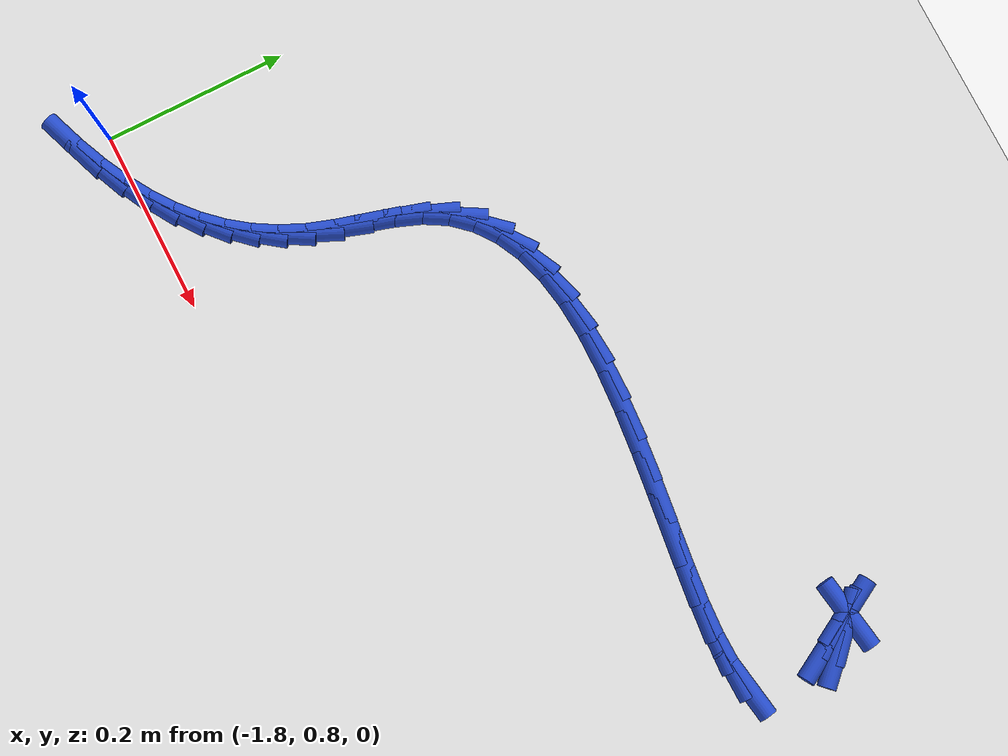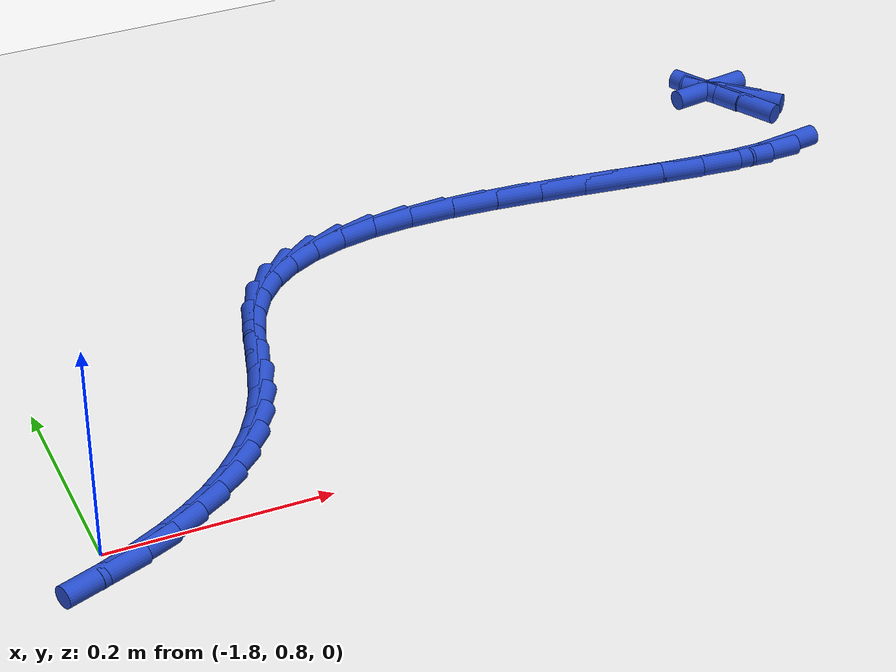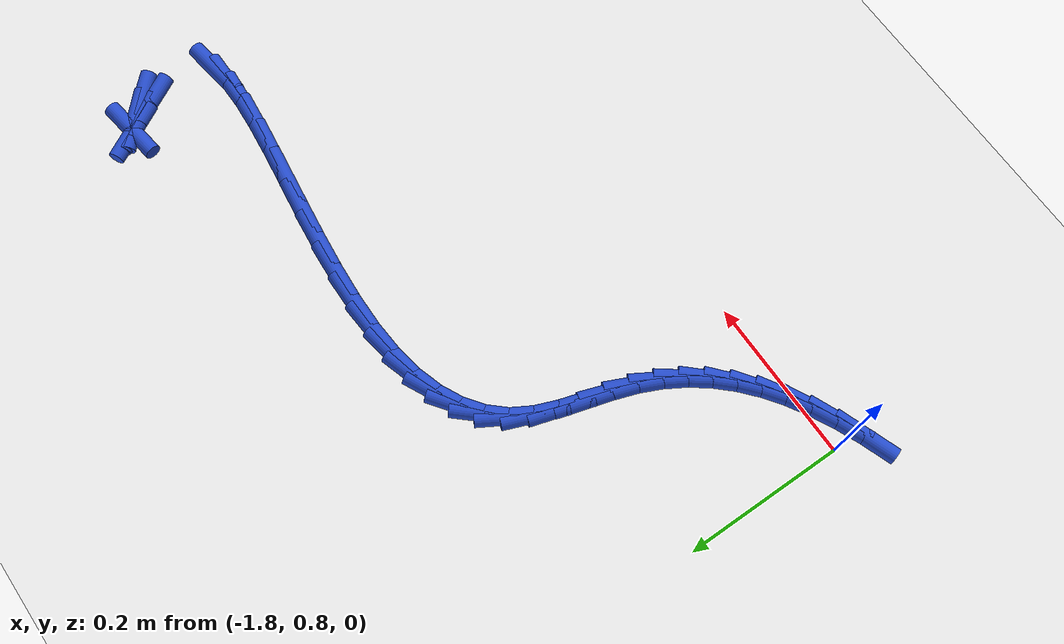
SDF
<sdf version="1.6">
 <world name="default">
  <model name="ground_plane">
   <static>1</static>
   <link name="link">
    <collision name="collision">
     <geometry><plane><normal>0 0 1</normal><size>100 100</size></plane></geometry>
     <surface><friction><ode><mu>100</mu><mu2>50</mu2></ode></friction></surface>
    </collision>
    <visual name="visual">
     <cast_shadows>0</cast_shadows>
     <geometry><plane><normal>0 0 1</normal><size>100 100</size></plane></geometry>
     <material>
      <script><uri>file://media/materials/scripts/gazebo.material</uri><name>Gazebo/WhiteGlow</name></script>
     </material>
    </visual>
   </link>
  </model>
  <model name="line">
   <link name="link_59">
    <pose>-0.9857142628793519 1.2242617893547254 0.01 0 1.57 -0.7892347633814933</pose>
    <collision name="collision">
     <geometry><cylinder><radius>0.01</radius><length>0.08</length></cylinder></geometry>
    </collision>
    <visual name="visual">
     <material>
      <script><name>Gazebo/Blue</name><uri>file://media/materials/scripts/gazebo.material</uri></script>
     </material>
     <geometry><cylinder><radius>0.01</radius><length>0.08</length></cylinder></geometry>
    </visual>
   </link>
   <link name="link_60">
    <pose>-1.002632490470047 1.2413103345045786 0.01 0 1.57 -0.7528733613338938</pose>
    <collision name="collision">
     <geometry><cylinder><radius>0.01</radius><length>0.08</length></cylinder></geometry>
    </collision>
    <visual name="visual">
     <material>
      <script><name>Gazebo/Blue</name><uri>file://media/materials/scripts/gazebo.material</uri></script>
     </material>
     <geometry><cylinder><radius>0.01</radius><length>0.08</length></cylinder></geometry>
    </visual>
   </link>
   <link name="link_61">
    <pose>-1.0124485512102286 1.250507766984587 0.01 0 1.57 0.15066748449436723</pose>
    <collision name="collision">
     <geometry><cylinder><radius>0.01</radius><length>0.08</length></cylinder></geometry>
    </collision>
    <visual name="visual">
     <material>
      <script><name>Gazebo/Blue</name><uri>file://media/materials/scripts/gazebo.material</uri></script>
     </material>
     <geometry><cylinder><radius>0.01</radius><length>0.08</length></cylinder></geometry>
    </visual>
   </link>
   <link name="link_62">
    <pose>-1.0144766536108631 1.250199864497581 0.01 0 1.57 -1.0587248045058342</pose>
    <collision name="collision">
     <geometry><cylinder><radius>0.01</radius><length>0.08</length></cylinder></geometry>
    </collision>
    <visual name="visual">
     <material>
      <script><name>Gazebo/Blue</name><uri>file://media/materials/scripts/gazebo.material</uri></script>
     </material>
     <geometry><cylinder><radius>0.01</radius><length>0.08</length></cylinder></geometry>
    </visual>
   </link>
   <link name="link_63">
    <pose>-1.0080310061829176 1.2387324047463908 0.01 0 1.57 -1.0088660010166173</pose>
    <collision name="collision">
     <geometry><cylinder><radius>0.01</radius><length>0.08</length></cylinder></geometry>
    </collision>
    <visual name="visual">
     <material>
      <script><name>Gazebo/Blue</name><uri>file://media/materials/scripts/gazebo.material</uri></script>
     </material>
     <geometry><cylinder><radius>0.01</radius><length>0.08</length></cylinder></geometry>
    </visual>
   </link>
   <link name="link_64">
    <pose>-0.9934471232958112 1.2155702174096747 0.01 0 1.57 -1.060344816596319</pose>
    <collision name="collision">
     <geometry><cylinder><radius>0.01</radius><length>0.08</length></cylinder></geometry>
    </collision>
    <visual name="visual">
     <material>
      <script><name>Gazebo/Blue</name><uri>file://media/materials/scripts/gazebo.material</uri></script>
     </material>
     <geometry><cylinder><radius>0.01</radius><length>0.08</length></cylinder></geometry>
    </visual>
   </link>
   <link name="link_69">
    <pose>-0.9994854027345242 1.1245450111235813 0.01 0 1.57 0.1552745756650453</pose>
    <collision name="collision">
     <geometry><cylinder><radius>0.01</radius><length>0.08</length></cylinder></geometry>
    </collision>
    <visual name="visual">
     <material>
      <script><name>Gazebo/Blue</name><uri>file://media/materials/scripts/gazebo.material</uri></script>
     </material>
     <geometry><cylinder><radius>0.01</radius><length>0.08</length></cylinder></geometry>
    </visual>
   </link>
   <link name="link_70">
    <pose>-1.0242919576279166 1.1206619262527326 0.01 0 1.57 0.018579820091273836</pose>
    <collision name="collision">
     <geometry><cylinder><radius>0.01</radius><length>0.08</length></cylinder></geometry>
    </collision>
    <visual name="visual">
     <material>
      <script><name>Gazebo/Blue</name><uri>file://media/materials/scripts/gazebo.material</uri></script>
     </material>
     <geometry><cylinder><radius>0.01</radius><length>0.08</length></cylinder></geometry>
    </visual>
   </link>
   <link name="link_71">
    <pose>-1.0548751734027026 1.120093630210548 0.01 0 1.57 -0.057432552799085906</pose>
    <collision name="collision">
     <geometry><cylinder><radius>0.01</radius><length>0.08</length></cylinder></geometry>
    </collision>
    <visual name="visual">
     <material>
      <script><name>Gazebo/Blue</name><uri>file://media/materials/scripts/gazebo.material</uri></script>
     </material>
     <geometry><cylinder><radius>0.01</radius><length>0.08</length></cylinder></geometry>
    </visual>
   </link>
   <link name="link_72">
    <pose>-1.0902501674397589 1.1221275432013216 0.01 0 1.57 -0.09980392380520862</pose>
    <collision name="collision">
     <geometry><cylinder><radius>0.01</radius><length>0.08</length></cylinder></geometry>
    </collision>
    <visual name="visual">
     <material>
      <script><name>Gazebo/Blue</name><uri>file://media/materials/scripts/gazebo.material</uri></script>
     </material>
     <geometry><cylinder><radius>0.01</radius><length>0.08</length></cylinder></geometry>
    </visual>
   </link>
   <link name="link_73">
    <pose>-1.1294320571199623 1.1260510854293497 0.01 0 1.57 -0.1208397421972083</pose>
    <collision name="collision">
     <geometry><cylinder><radius>0.01</radius><length>0.08</length></cylinder></geometry>
    </collision>
    <visual name="visual">
     <material>
      <script><name>Gazebo/Blue</name><uri>file://media/materials/scripts/gazebo.material</uri></script>
     </material>
     <geometry><cylinder><radius>0.01</radius><length>0.08</length></cylinder></geometry>
    </visual>
   </link>
   <link name="link_74">
    <pose>-1.1714359598241897 1.1311516770989276 0.01 0 1.57 -0.12626200919075067</pose>
    <collision name="collision">
     <geometry><cylinder><radius>0.01</radius><length>0.08</length></cylinder></geometry>
    </collision>
    <visual name="visual">
     <material>
      <script><name>Gazebo/Blue</name><uri>file://media/materials/scripts/gazebo.material</uri></script>
     </material>
     <geometry><cylinder><radius>0.01</radius><length>0.08</length></cylinder></geometry>
    </visual>
   </link>
   <link name="link_75">
    <pose>-1.215276992933318 1.136716738414351 0.01 0 1.57 -0.11840882488628839</pose>
    <collision name="collision">
     <geometry><cylinder><radius>0.01</radius><length>0.08</length></cylinder></geometry>
    </collision>
    <visual name="visual">
     <material>
      <script><name>Gazebo/Blue</name><uri>file://media/materials/scripts/gazebo.material</uri></script>
     </material>
     <geometry><cylinder><radius>0.01</radius><length>0.08</length></cylinder></geometry>
    </visual>
   </link>
   <link name="link_76">
    <pose>-1.2599702738282228 1.1420336895799152 0.01 0 1.57 -0.09745061935984639</pose>
    <collision name="collision">
     <geometry><cylinder><radius>0.01</radius><length>0.08</length></cylinder></geometry>
    </collision>
    <visual name="visual">
     <material>
      <script><name>Gazebo/Blue</name><uri>file://media/materials/scripts/gazebo.material</uri></script>
     </material>
     <geometry><cylinder><radius>0.01</radius><length>0.08</length></cylinder></geometry>
    </visual>
   </link>
   <link name="link_77">
    <pose>-1.3045309198897832 1.1463899507999158 0.01 0 1.57 -0.06168036809671838</pose>
    <collision name="collision">
     <geometry><cylinder><radius>0.01</radius><length>0.08</length></cylinder></geometry>
    </collision>
    <visual name="visual">
     <material>
      <script><name>Gazebo/Blue</name><uri>file://media/materials/scripts/gazebo.material</uri></script>
     </material>
     <geometry><cylinder><radius>0.01</radius><length>0.08</length></cylinder></geometry>
    </visual>
   </link>
   <link name="link_78">
    <pose>-1.347974048498875 1.1490729422786488 0.01 0 1.57 -0.007187508189697457</pose>
    <collision name="collision">
     <geometry><cylinder><radius>0.01</radius><length>0.08</length></cylinder></geometry>
    </collision>
    <visual name="visual">
     <material>
      <script><name>Gazebo/Blue</name><uri>file://media/materials/scripts/gazebo.material</uri></script>
     </material>
     <geometry><cylinder><radius>0.01</radius><length>0.08</length></cylinder></geometry>
    </visual>
   </link>
   <link name="link_79">
    <pose>-1.389314777036375 1.149370084220409 0.01 0 1.57 0.07226812401409972</pose>
    <collision name="collision">
     <geometry><cylinder><radius>0.01</radius><length>0.08</length></cylinder></geometry>
    </collision>
    <visual name="visual">
     <material>
      <script><name>Gazebo/Blue</name><uri>file://media/materials/scripts/gazebo.material</uri></script>
     </material>
     <geometry><cylinder><radius>0.01</radius><length>0.08</length></cylinder></geometry>
    </visual>
   </link>
   <link name="link_80">
    <pose>-1.4276071407014916 1.1465979392427885 0.01 0 1.57 0.17601145373974536</pose>
    <collision name="collision">
     <geometry><cylinder><radius>0.01</radius><length>0.08</length></cylinder></geometry>
    </collision>
    <visual name="visual">
     <material>
      <script><name>Gazebo/Blue</name><uri>file://media/materials/scripts/gazebo.material</uri></script>
     </material>
     <geometry><cylinder><radius>0.01</radius><length>0.08</length></cylinder></geometry>
    </visual>
   </link>
   <link name="link_81">
    <pose>-1.4623636971600715 1.1404164204337106 0.01 0 1.57 0.3031713009041322</pose>
    <collision name="collision">
     <geometry><cylinder><radius>0.01</radius><length>0.08</length></cylinder></geometry>
    </collision>
    <visual name="visual">
     <material>
      <script><name>Gazebo/Blue</name><uri>file://media/materials/scripts/gazebo.material</uri></script>
     </material>
     <geometry><cylinder><radius>0.01</radius><length>0.08</length></cylinder></geometry>
    </visual>
   </link>
   <link name="link_82">
    <pose>-1.4933957489073275 1.1307091467736887 0.01 0 1.57 0.45724473415530625</pose>
    <collision name="collision">
     <geometry><cylinder><radius>0.01</radius><length>0.08</length></cylinder></geometry>
    </collision>
    <visual name="visual">
     <material>
      <script><name>Gazebo/Blue</name><uri>file://media/materials/scripts/gazebo.material</uri></script>
     </material>
     <geometry><cylinder><radius>0.01</radius><length>0.08</length></cylinder></geometry>
    </visual>
   </link>
   <link name="link_83">
    <pose>-1.5205197105454213 1.117363565287558 0.01 0 1.57 0.6385430067446697</pose>
    <collision name="collision">
     <geometry><cylinder><radius>0.01</radius><length>0.08</length></cylinder></geometry>
    </collision>
    <visual name="visual">
     <material>
      <script><name>Gazebo/Blue</name><uri>file://media/materials/scripts/gazebo.material</uri></script>
     </material>
     <geometry><cylinder><radius>0.01</radius><length>0.08</length></cylinder></geometry>
    </visual>
   </link>
   <link name="link_84">
    <pose>-1.5435519966765114 1.1002671230001528 0.01 0 1.57 0.8408047350247374</pose>
    <collision name="collision">
     <geometry><cylinder><radius>0.01</radius><length>0.08</length></cylinder></geometry>
    </collision>
    <visual name="visual">
     <material>
      <script><name>Gazebo/Blue</name><uri>file://media/materials/scripts/gazebo.material</uri></script>
     </material>
     <geometry><cylinder><radius>0.01</radius><length>0.08</length></cylinder></geometry>
    </visual>
   </link>
   <link name="link_85">
    <pose>-1.562309021902759 1.0793072669363095 0.01 0 1.57 1.046908763084747</pose>
    <collision name="collision">
     <geometry><cylinder><radius>0.01</radius><length>0.08</length></cylinder></geometry>
    </collision>
    <visual name="visual">
     <material>
      <script><name>Gazebo/Blue</name><uri>file://media/materials/scripts/gazebo.material</uri></script>
     </material>
     <geometry><cylinder><radius>0.01</radius><length>0.08</length></cylinder></geometry>
    </visual>
   </link>
   <link name="link_86">
    <pose>-1.5766790458229822 1.0544342466703833 0.01 0 1.57 1.2008478951903148</pose>
    <collision name="collision">
     <geometry><cylinder><radius>0.01</radius><length>0.08</length></cylinder></geometry>
    </collision>
    <visual name="visual">
     <material>
      <script><name>Gazebo/Blue</name><uri>file://media/materials/scripts/gazebo.material</uri></script>
     </material>
     <geometry><cylinder><radius>0.01</radius><length>0.08</length></cylinder></geometry>
    </visual>
   </link>
   <link name="link_87">
    <pose>-1.5875297225158906 1.0264544391785904 0.01 0 1.57 1.2790800485252356</pose>
    <collision name="collision">
     <geometry><cylinder><radius>0.01</radius><length>0.08</length></cylinder></geometry>
    </collision>
    <visual name="visual">
     <material>
      <script><name>Gazebo/Blue</name><uri>file://media/materials/scripts/gazebo.material</uri></script>
     </material>
     <geometry><cylinder><radius>0.01</radius><length>0.08</length></cylinder></geometry>
    </visual>
   </link>
   <link name="link_88">
    <pose>-1.596436551232766 0.9967929768630276 0.01 0 1.57 1.292182968399963</pose>
    <collision name="collision">
     <geometry><cylinder><radius>0.01</radius><length>0.08</length></cylinder></geometry>
    </collision>
    <visual name="visual">
     <material>
      <script><name>Gazebo/Blue</name><uri>file://media/materials/scripts/gazebo.material</uri></script>
     </material>
     <geometry><cylinder><radius>0.01</radius><length>0.08</length></cylinder></geometry>
    </visual>
   </link>
   <link name="link_89">
    <pose>-1.6049907649490731 0.9668887455955971 0.01 0 1.57 1.2422692446020063</pose>
    <collision name="collision">
     <geometry><cylinder><radius>0.01</radius><length>0.08</length></cylinder></geometry>
    </collision>
    <visual name="visual">
     <material>
      <script><name>Gazebo/Blue</name><uri>file://media/materials/scripts/gazebo.material</uri></script>
     </material>
     <geometry><cylinder><radius>0.01</radius><length>0.08</length></cylinder></geometry>
    </visual>
   </link>
   <link name="link_90">
    <pose>-1.6147784689903848 0.9381756944385862 0.01 0 1.57 1.1444239049834506</pose>
    <collision name="collision">
     <geometry><cylinder><radius>0.01</radius><length>0.08</length></cylinder></geometry>
    </collision>
    <visual name="visual">
     <material>
      <script><name>Gazebo/Blue</name><uri>file://media/materials/scripts/gazebo.material</uri></script>
     </material>
     <geometry><cylinder><radius>0.01</radius><length>0.08</length></cylinder></geometry>
    </visual>
   </link>
   <link name="link_91">
    <pose>-1.6268589721160207 0.9115805821413625 0.01 0 1.57 1.0375486268130099</pose>
    <collision name="collision">
     <geometry><cylinder><radius>0.01</radius><length>0.08</length></cylinder></geometry>
    </collision>
    <visual name="visual">
     <material>
      <script><name>Gazebo/Blue</name><uri>file://media/materials/scripts/gazebo.material</uri></script>
     </material>
     <geometry><cylinder><radius>0.01</radius><length>0.08</length></cylinder></geometry>
    </visual>
   </link>
   <link name="link_92">
    <pose>-1.6413153246723198 0.8870902433123828 0.01 0 1.57 0.9291794185078801</pose>
    <collision name="collision">
     <geometry><cylinder><radius>0.01</radius><length>0.08</length></cylinder></geometry>
    </collision>
    <visual name="visual">
     <material>
      <script><name>Gazebo/Blue</name><uri>file://media/materials/scripts/gazebo.material</uri></script>
     </material>
     <geometry><cylinder><radius>0.01</radius><length>0.08</length></cylinder></geometry>
    </visual>
   </link>
   <link name="link_93">
    <pose>-1.6581246855259126 0.8645895621371701 0.01 0 1.57 0.8227650540368983</pose>
    <collision name="collision">
     <geometry><cylinder><radius>0.01</radius><length>0.08</length></cylinder></geometry>
    </collision>
    <visual name="visual">
     <material>
      <script><name>Gazebo/Blue</name><uri>file://media/materials/scripts/gazebo.material</uri></script>
     </material>
     <geometry><cylinder><radius>0.01</radius><length>0.08</length></cylinder></geometry>
    </visual>
   </link>
   <link name="link_94">
    <pose>-1.67726421354343 0.8439634228012481 0.01 0 1.57 0.7214835413718582</pose>
    <collision name="collision">
     <geometry><cylinder><radius>0.01</radius><length>0.08</length></cylinder></geometry>
    </collision>
    <visual name="visual">
     <material>
      <script><name>Gazebo/Blue</name><uri>file://media/materials/scripts/gazebo.material</uri></script>
     </material>
     <geometry><cylinder><radius>0.01</radius><length>0.08</length></cylinder></geometry>
    </visual>
   </link>
   <link name="link_95">
    <pose>-1.698711067591501 0.82509670949014 0.01 0 1.57 0.6277826128086919</pose>
    <collision name="collision">
     <geometry><cylinder><radius>0.01</radius><length>0.08</length></cylinder></geometry>
    </collision>
    <visual name="visual">
     <material>
      <script><name>Gazebo/Blue</name><uri>file://media/materials/scripts/gazebo.material</uri></script>
     </material>
     <geometry><cylinder><radius>0.01</radius><length>0.08</length></cylinder></geometry>
    </visual>
   </link>
   <link name="link_96">
    <pose>-1.7224424065367563 0.8078743063893696 0.01 0 1.57 0.5431707524089897</pose>
    <collision name="collision">
     <geometry><cylinder><radius>0.01</radius><length>0.08</length></cylinder></geometry>
    </collision>
    <visual name="visual">
     <material>
      <script><name>Gazebo/Blue</name><uri>file://media/materials/scripts/gazebo.material</uri></script>
     </material>
     <geometry><cylinder><radius>0.01</radius><length>0.08</length></cylinder></geometry>
    </visual>
   </link>
   <link name="link_97">
    <pose>-1.7484353892458258 0.7921810976844603 0.01 0 1.57 0.46826253868430623</pose>
    <collision name="collision">
     <geometry><cylinder><radius>0.01</radius><length>0.08</length></cylinder></geometry>
    </collision>
    <visual name="visual">
     <material>
      <script><name>Gazebo/Blue</name><uri>file://media/materials/scripts/gazebo.material</uri></script>
     </material>
     <geometry><cylinder><radius>0.01</radius><length>0.08</length></cylinder></geometry>
    </visual>
   </link>
   <link name="link_98">
    <pose>-1.77666717458534 0.7779019675609352 0.01 0 1.57 0.40297938345953266</pose>
    <collision name="collision">
     <geometry><cylinder><radius>0.01</radius><length>0.08</length></cylinder></geometry>
    </collision>
    <visual name="visual">
     <material>
      <script><name>Gazebo/Blue</name><uri>file://media/materials/scripts/gazebo.material</uri></script>
     </material>
     <geometry><cylinder><radius>0.01</radius><length>0.08</length></cylinder></geometry>
    </visual>
   </link>
   <link name="link_99">
    <pose>-1.807114921421929 0.7649218002043182 0.01 0 1.57 0.34679199227225677</pose>
    <collision name="collision">
     <geometry><cylinder><radius>0.01</radius><length>0.08</length></cylinder></geometry>
    </collision>
    <visual name="visual">
     <material>
      <script><name>Gazebo/Blue</name><uri>file://media/materials/scripts/gazebo.material</uri></script>
     </material>
     <geometry><cylinder><radius>0.01</radius><length>0.08</length></cylinder></geometry>
    </visual>
   </link>
  </model>
 </world>
</sdf>
